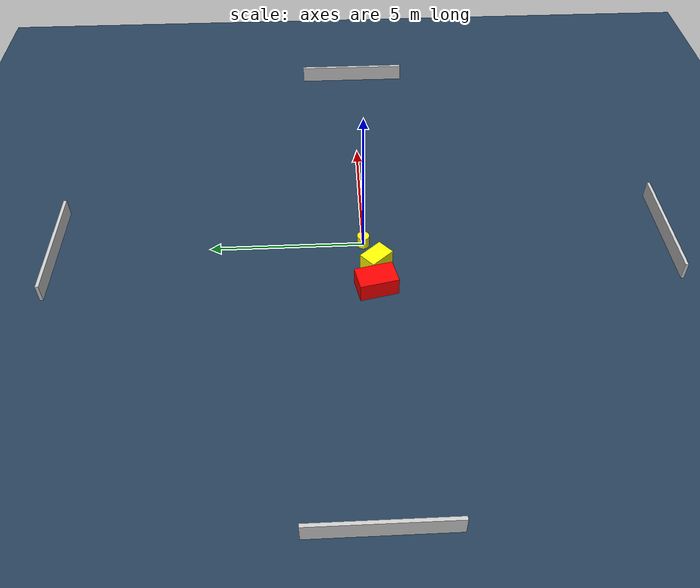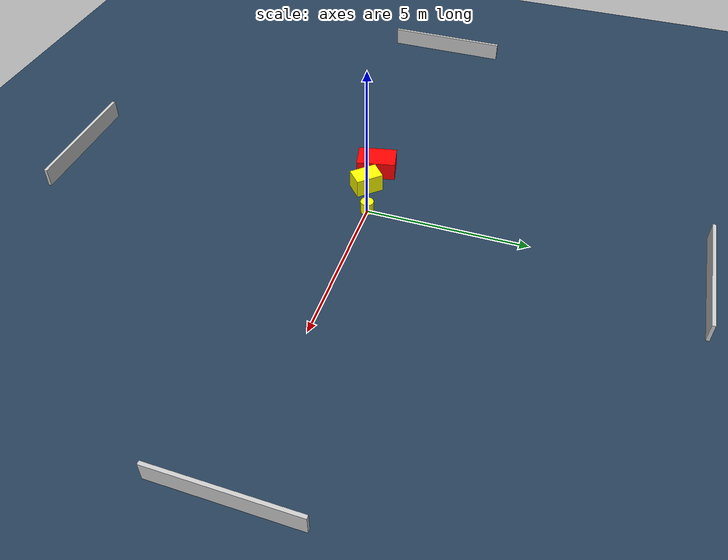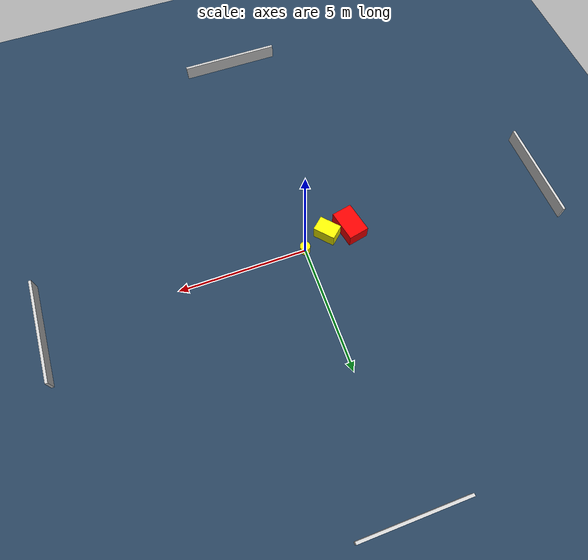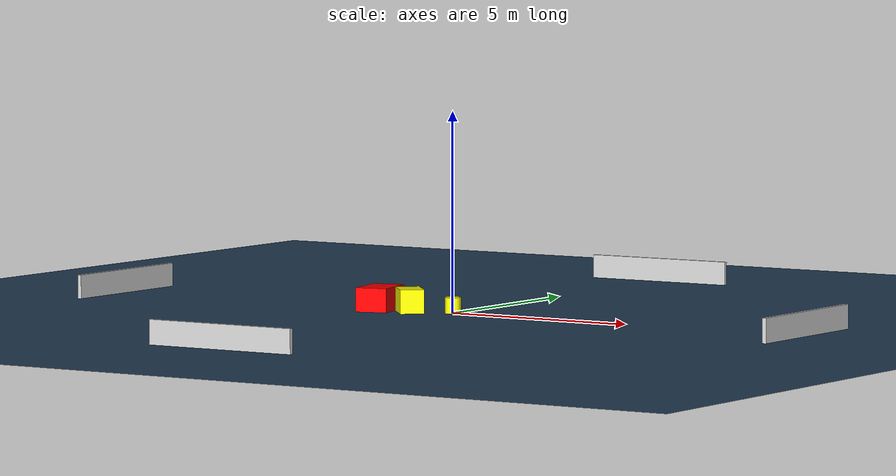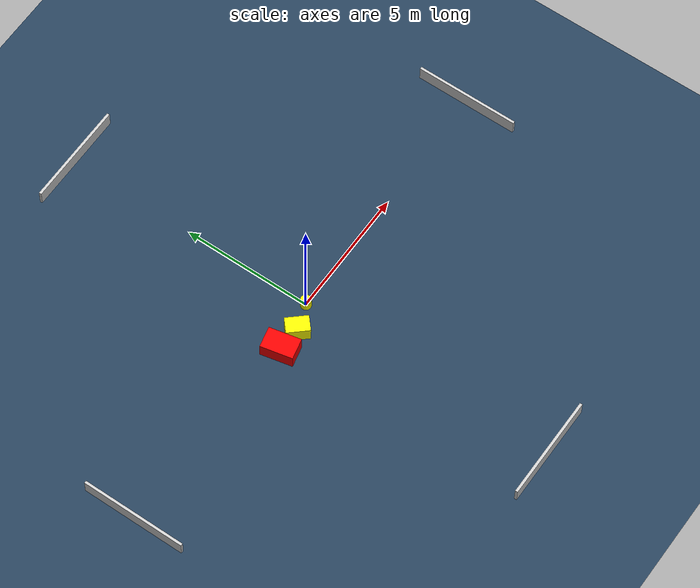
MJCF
<?xml version="1.0" ?>
<mujoco model="generated_environment">
  <option timestep="0.01" integrator="RK4" cone="elliptic"/>
  <default>
    <geom density="1"/>
  </default>
  <asset>
    <texture builtin="gradient" height="3072" name="skybox" rgb1="0.3 0.5 0.7" rgb2="0 0 0" type="skybox" width="512"/>
    <texture builtin="checker" height="300" name="groundplane" rgb1="0.2 0.3 0.4" rgb2="0.1 0.2 0.3" type="2d" width="300"/>
    <material name="groundplane" reflectance="0.2" texrepeat="5 5" texture="groundplane"/>
  </asset>
  <worldbody>
    <light dir="0 0 -1" directional="true" pos="0 0 1.5"/>
    <geom condim="3" friction="0.5 0.005 0.001" material="groundplane" name="floor" pos="0 0 0" size="0 0 0.05" type="plane"/>
    <body name="walls">
      <geom name="wall_1" condim="4" pos="-10.0 0.0 0.3" rgba="0.800000011920929 0.800000011920929 0.800000011920929 1.0" size="0.05 2.0 0.3" type="box"/>
      <geom name="wall_2" condim="4" pos="10.0 0.0 0.3" rgba="0.800000011920929 0.800000011920929 0.800000011920929 1.0" size="0.05 2.0 0.3" type="box"/>
      <geom name="wall_3" condim="4" pos="0.0 -10.0 0.3" rgba="0.800000011920929 0.800000011920929 0.800000011920929 1.0" size="2.0 0.05 0.3" type="box"/>
      <geom name="wall_4" condim="4" pos="0.0 10.0 0.3" rgba="0.800000011920929 0.800000011920929 0.800000011920929 1.0" size="2.0 0.05 0.3" type="box"/>
    </body>
    <body name="robot">
      <joint name="joint_x" type="slide" pos="0 0 0" axis="1 0 0"/>
      <joint name="joint_y" type="slide" pos="0 0 0" axis="0 1 0"/>
      <geom name="robot" type="cylinder" pos="0.0 0.0 0.2" size="0.2 0.2 0.0" mass="5.0" friction="1.0 0.005 0.0001" condim="4" rgba="1.0 1.0 0.0 1.0"/>
    </body>
    <body name="obstacle_1_movable">
      <geom name="obstacle_1_movable" condim="4" pos="-1.035313371108021 -0.3691991563286558 0.3" euler="0 0 311.71982013656213" friction="0.0 0.005 0.001" rgba="1.0 1.0 0.0 1.0" size="0.4366145199373476 0.3005405449718895 0.3" type="box" mass="0.1"/>
      <joint type="free"/>
    </body>
    <body name="obstacle_2_static">
      <geom name="obstacle_2_static" condim="4" pos="-1.960011411094695 -0.3172421544598484 0.3" euler="0 0 12.18185082317306" friction="0.0 0.005 0.001" rgba="1.0 0.0 0.0 1.0" size="0.40328798716606096 0.6137200337572868 0.3" type="box"/>
    </body>
  </worldbody>
  <actuator>
    <motor name="actuator_x" joint="joint_x" gear="1" ctrlrange="-1 1"/>
    <motor name="actuator_y" joint="joint_y" gear="1" ctrlrange="-1 1"/>
  </actuator>
</mujoco>
